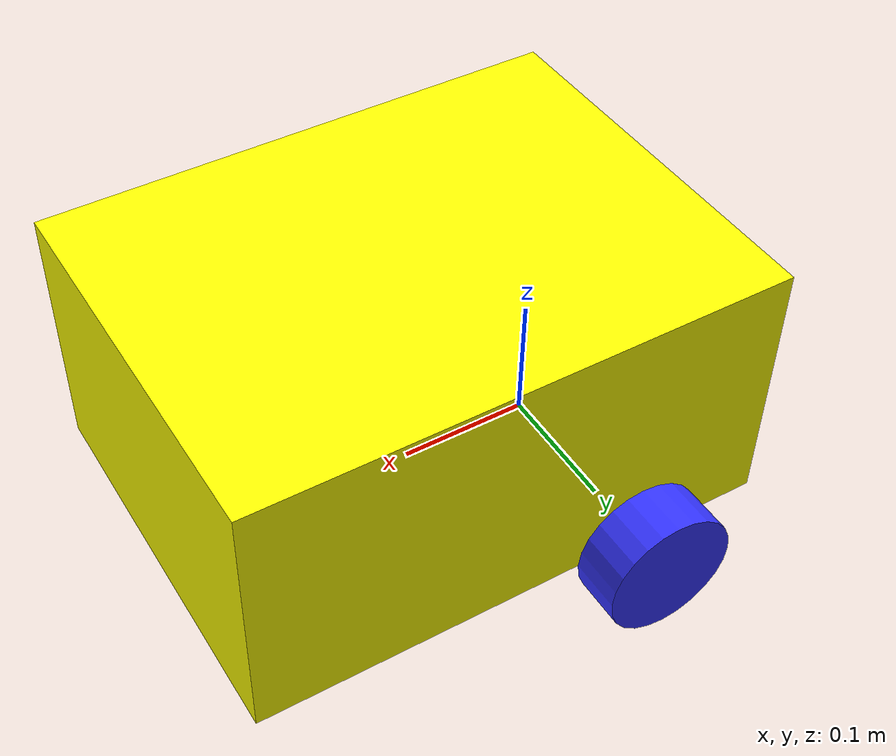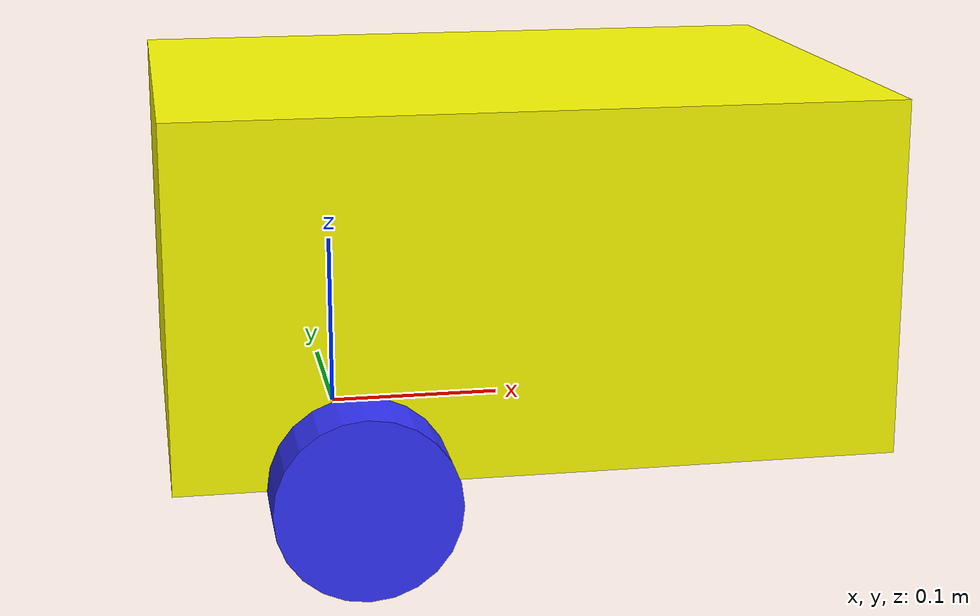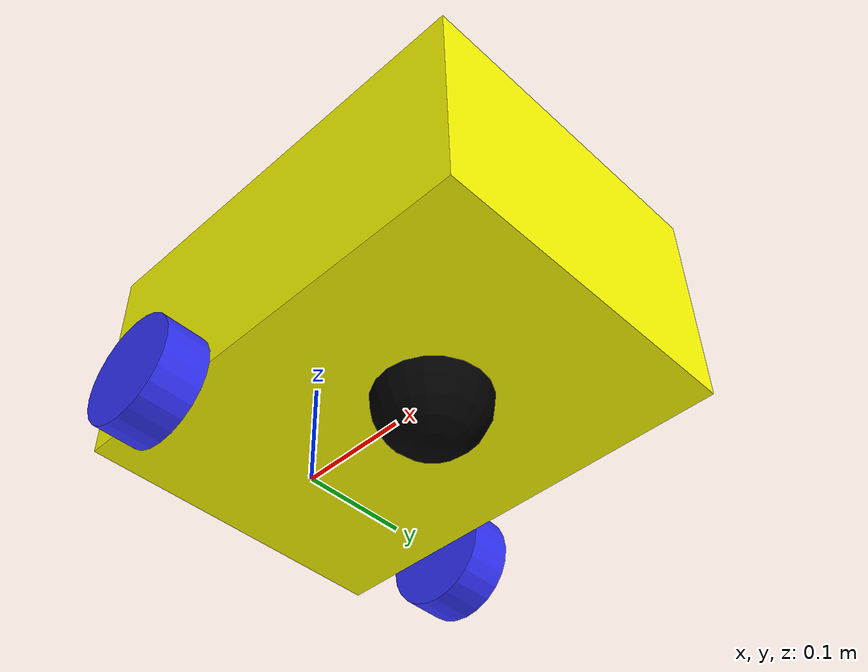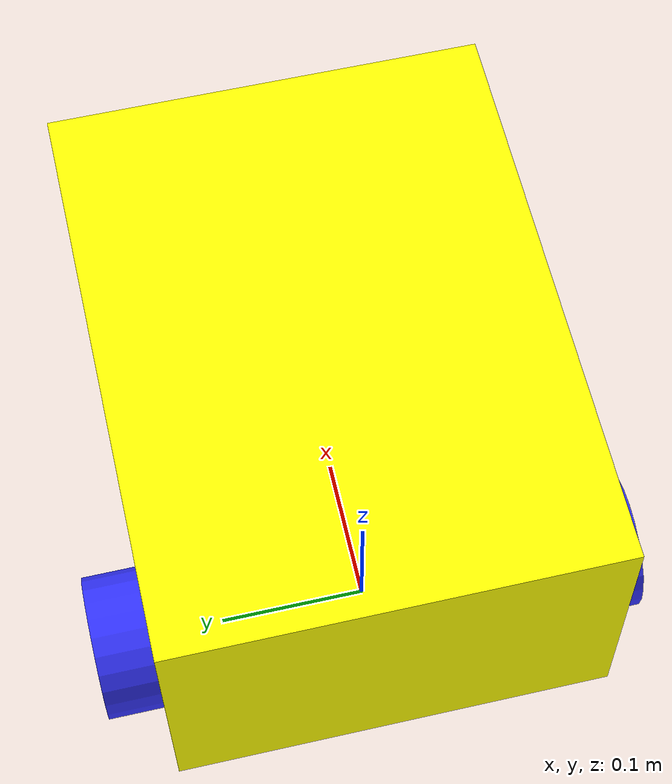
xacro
<?xml version="1.0"?>
<robot xmlns:xacro="http://www.ros.org/wiki/xacro">

    <xacro:include filename="inertial_macros.xacro"/>

    <!-- Wymiary korpusu robota: kolejno długość, szerokość, wysokość, następnie masa, promień kół i ich grubość -->
    <xacro:property name="HULL_length" value="0.4"/>
    <xacro:property name="HULL_width" value="0.3"/>
    <xacro:property name="HULL_height" value="0.2"/>
    <xacro:property name="HULL_mass" value="1.0"/>
    <xacro:property name="wheel_radius" value="0.05"/>
    <xacro:property name="wheel_thickness" value="0.04"/>

    <xacro:property name="wheel_separation" value="0.036"/>
    <xacro:property name="wheel_width" value="0.024"/>
        params="diffdrive_update_rate:=40 wheel_separation wheel_radius:=0.036 wheel_width:=0.024 wheel_torque:=1.0 wheel_accel:=1.8 mass_kg:=3.5 base_diameter *mesh">

    <!-- offsety bzdety -->
    <xacro:property name="wheel_mass" value="0.05"/>
    <xacro:property name="wheel_offset_x" value="0.226"/>
    <xacro:property name="wheel_offset_y" value="0.1485"/>
    <xacro:property name="wheel_offset_z" value="0.01"/>
    <xacro:property name="caster_wheel_radius" value="0.01"/>
    <xacro:property name="caster_wheel_mass" value="0.01"/>
    <xacro:property name="caster_wheel_offset_x" value="0.075"/>
    <xacro:property name="caster_wheel_offset_z" value="${wheel_offset_z - wheel_radius + caster_wheel_radius}"/>

    <!-- Macro do kół z roomby  -->
    <xacro:property name="PI" value="3.1415926535897931" />

    <xacro:macro name="create_wheel" params="prefix y_offset wheel_radius wheel_width">
        <link name="${prefix}_wheel_link">
        <inertial>
            <origin xyz="0 0 0" />
            <mass value="0.01" />
            <inertia ixx="0.001" ixy="0.0" ixz="0.0" iyy="0.001" iyz="0.0" izz="0.001" />
        </inertial>

        <visual>
            <origin xyz="0 0 0" rpy="0 ${PI/2} ${PI/2}" />
            <geometry>
            <cylinder radius="${wheel_radius}" length="${wheel_width}" />
            </geometry>
        </visual>

        <collision>
            <origin xyz="0 0 0" rpy="0 ${PI/2} ${PI/2}" />
            <geometry>
            <cylinder radius="${wheel_radius}" length="${wheel_width}" />
            </geometry>
        </collision>
        </link>

        <joint name="${prefix}_wheel_joint" type="continuous">
        <origin xyz="0 ${y_offset} 0.015" rpy="0 0 0" />
        <parent link="base_link" />
        <child link="${prefix}_wheel_link" />
        <axis xyz="0 1 0" />
        </joint>
    </xacro:macro>

    <!-- koniec makro -->

    <material name="white">
        <color rgba="1 1 1 1"/>
    </material>

    <material name="orange">
        <color rgba="1 0.3 0.1 1"/>
    </material>

    <material name="blue">
        <color rgba="0.2 0.2 1 1"/>
    </material>

    <material name="black">
        <color rgba="0 0 0 1"/>
    </material>

    <material name="red">
        <color rgba="1 0 0 1"/>
    </material>

    <material name="yellow">
        <color rgba="1 1 0 1"/>
    </material>

    <link name="base_link">

    </link>

    <joint name="core_joint" type="fixed">
        <parent link="base_link"/>
        <child link="core"/>
        <origin xyz="-0.1 0 0"/>
    </joint>

    <link name="core">
        <visual>
            <origin xyz="${HULL_length/2} 0 ${HULL_height/2}"/>
            <geometry>
                <box size ="${HULL_length} ${HULL_width} ${HULL_height}"/>
            </geometry>
            <material name="yellow"/>
        </visual>
        <collision>
            <origin xyz="${HULL_length/2} 0 ${HULL_height/2}"/>
            <geometry>
                <box size ="${HULL_length} ${HULL_width} ${HULL_height}"/>
            </geometry>
        </collision>
        <xacro:inertial_box mass="0.5" x="${HULL_length}" y="${HULL_width}" z="${HULL_height}">
            <origin xyz="${HULL_length/2} 0 ${HULL_height/2}" rpy="0 0 0"/>
        </xacro:inertial_box>
    </link>

    <!-- left wheel link -->

    <joint name="left_wheel_joint" type="continuous">
        <parent link="base_link"/>
        <child link="left_wheel"/>
        <origin xyz="0 ${HULL_width/2+wheel_thickness/2} 0" rpy="-${pi/2} 0 0"/>
        <axis xyz="0 0 1"/>
    </joint>

    <link name="left_wheel">
        <visual>
            <geometry>
                <cylinder radius="${wheel_radius}" length="${wheel_thickness}"/>
            </geometry>
            <material name="blue"/>

        </visual>
        <collision>
            <geometry>
                <cylinder radius="${wheel_radius}" length="${wheel_thickness}"/>
            </geometry>

        </collision>
        <xacro:inertial_cylinder mass="1" length="${wheel_thickness}" radius="${wheel_radius}">
            <origin xyz="0 0 0" rpy="0 0 0"/>
        </xacro:inertial_cylinder>
    </link>

    <!-- right wheel link -->

    <joint name="right_wheel_joint" type="continuous">
        <parent link="base_link"/>
        <child link="right_wheel"/>
        <origin xyz="0 ${-HULL_width/2-wheel_thickness/2} 0" rpy="${pi/2} 0 0"/>
        <axis xyz="0 0 -1"/>
    </joint>

    <link name="right_wheel">
        <visual>
            <geometry>
                <cylinder radius="${wheel_radius}" length="${wheel_thickness}"/>
            </geometry>
            <material name="blue"/>

        </visual>
        <collision>
            <geometry>
                <cylinder radius="${wheel_radius}" length="${wheel_thickness}"/>
            </geometry>

        </collision>
        <xacro:inertial_cylinder mass="1" length="${wheel_thickness}" radius="${wheel_radius}">
            <origin xyz="0 0 0" rpy="0 0 0"/>
        </xacro:inertial_cylinder>
    </link>

    <!-- caster wheel -->
    <joint name="caster_wheel_joint" type="fixed">
        <parent link="core"/>
        <child link="caster_wheel"/>
        <origin xyz="0.24 0 0"/>
    </joint>

    <link name="caster_wheel">
        <visual>
            <geometry>
                <sphere radius="0.05"/>
            </geometry>
            <material name="black"/>

        </visual>
        <collision>
            <geometry>
                <sphere radius="0.05"/>
            </geometry>
            <material name="black"/>

        </collision>
        <xacro:inertial_sphere mass="0.1" radius="0.05">
            <origin xyz="0 0 0" rpy="0 0 0"/>
        </xacro:inertial_sphere>
    </link>

    <!-- Kola roomby -->

</robot>
